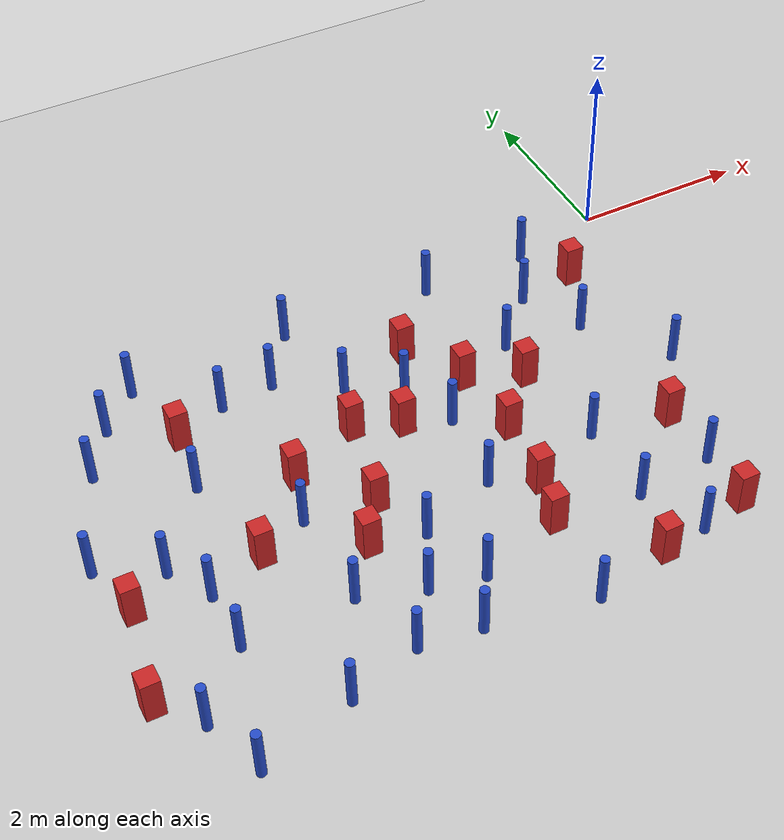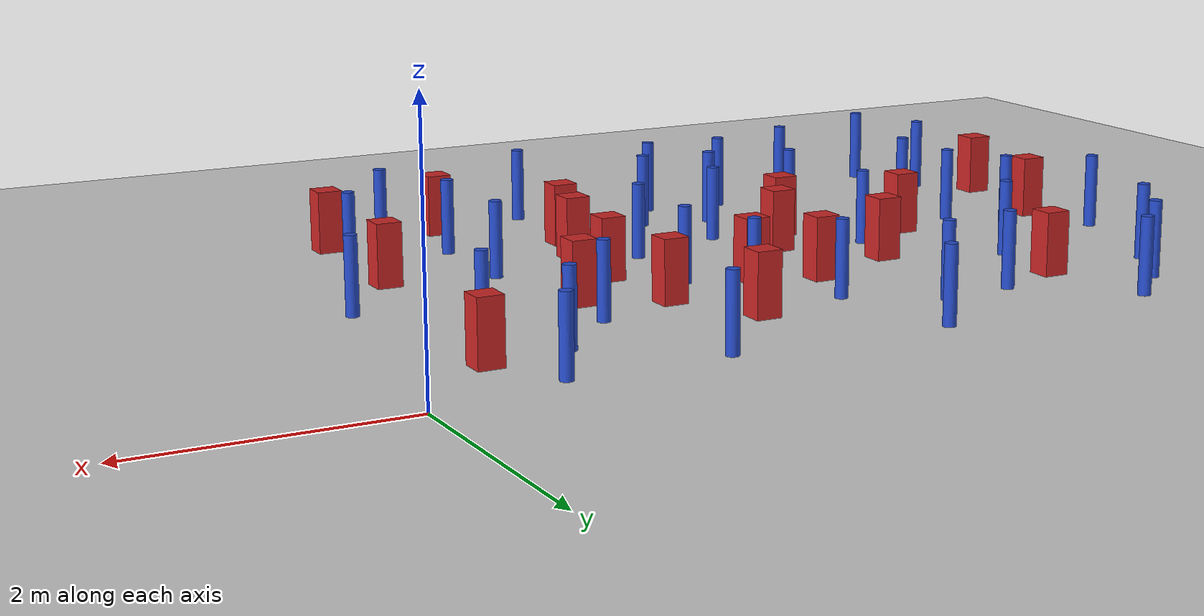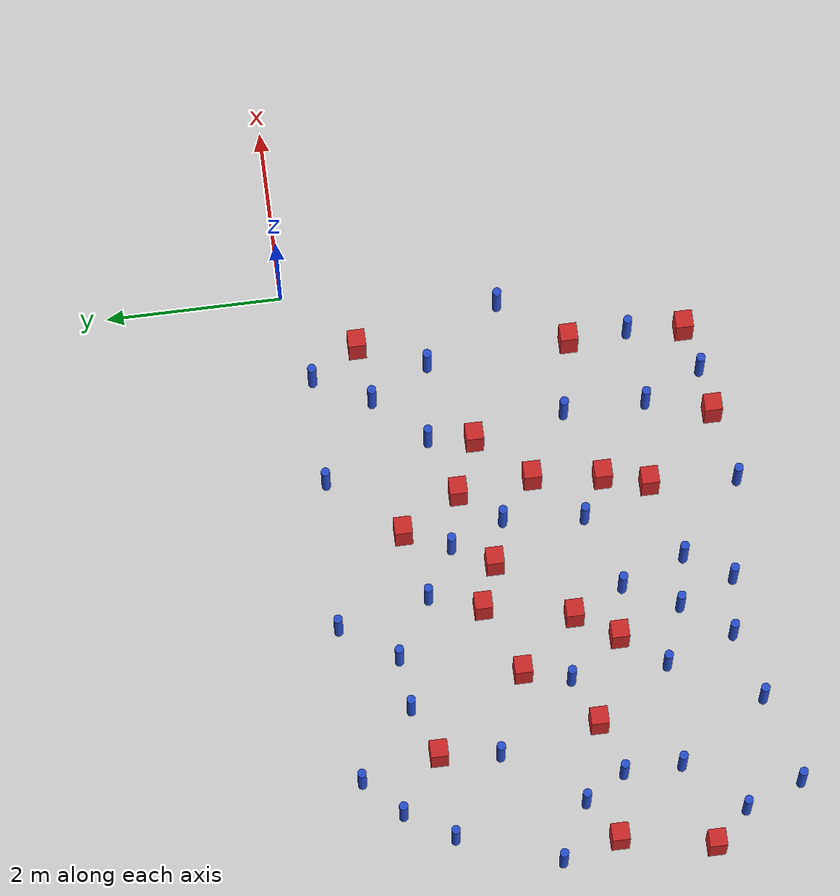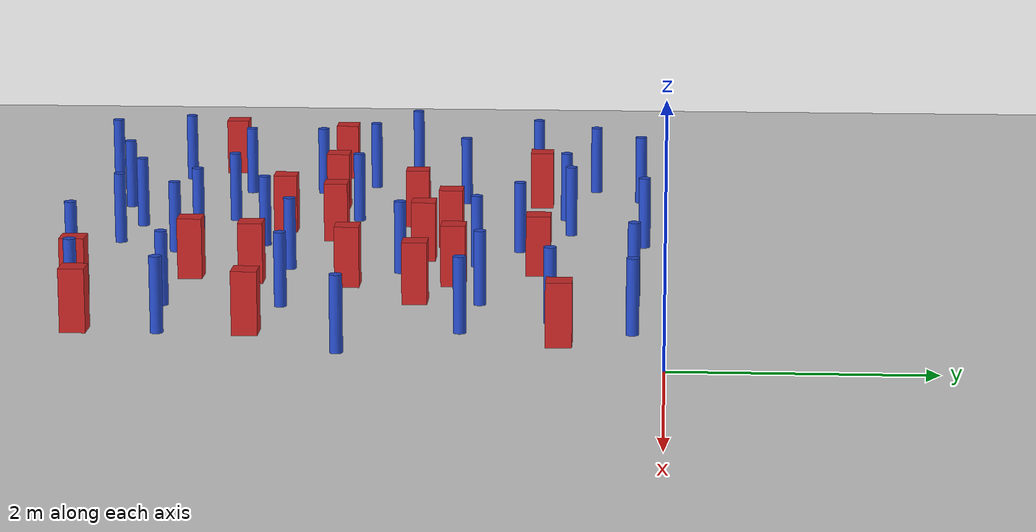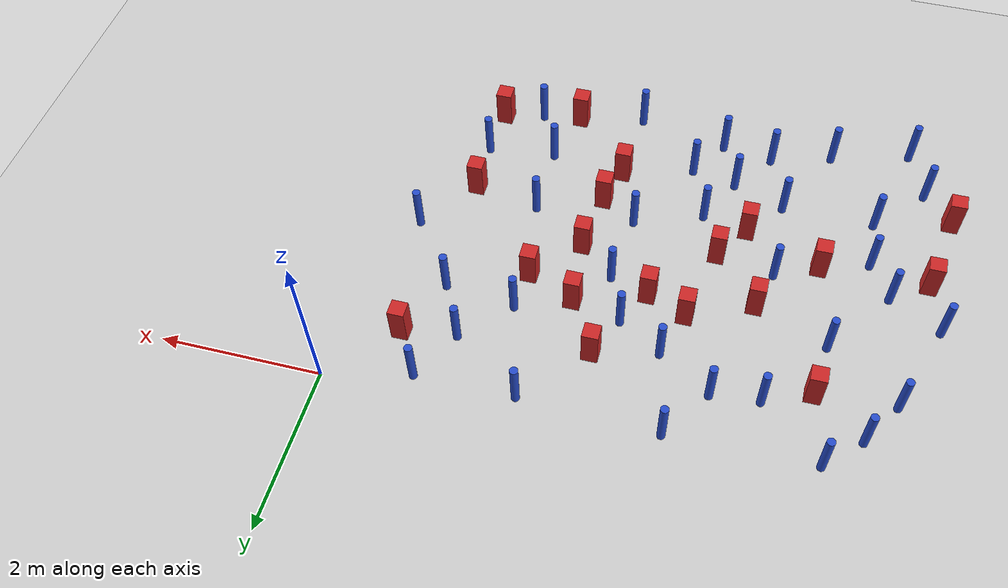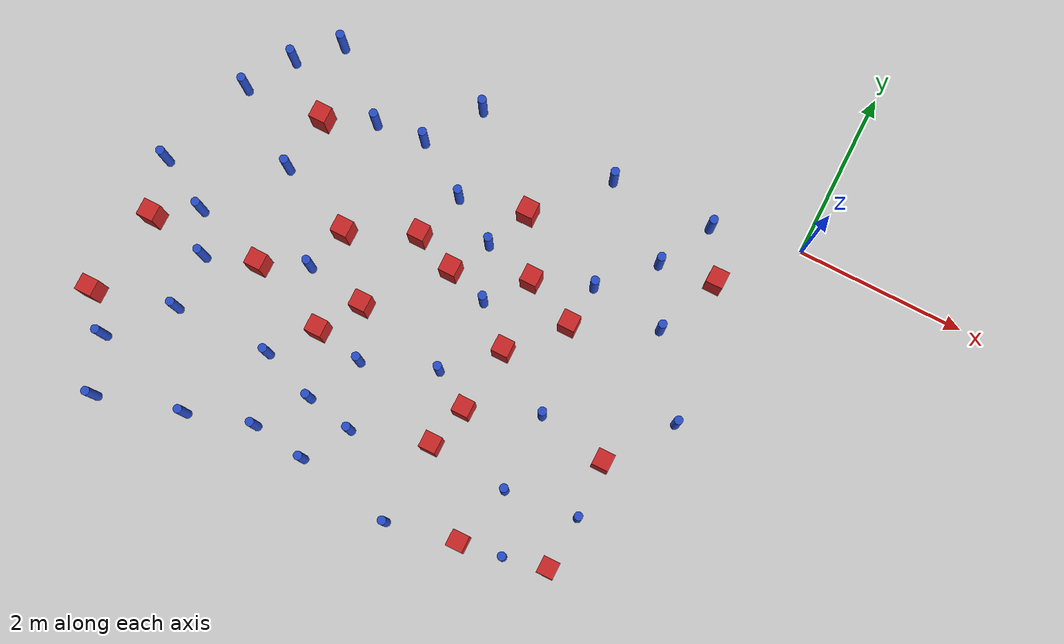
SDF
<sdf version="1.6">
 <world name="default">
  <model name="ground_plane">
   <static>1</static>
   <link name="link">
    <collision name="collision">
     <geometry><plane><normal>0 0 1</normal><size>100 100</size></plane></geometry>
     <surface><friction><ode><mu>100</mu><mu2>50</mu2></ode></friction></surface>
    </collision>
    <visual name="visual">
     <cast_shadows>0</cast_shadows>
     <geometry><plane><normal>0 0 1</normal><size>100 100</size></plane></geometry>
     <material>
      <ambient>1.0 1.0 1.0 1.0</ambient>
      <diffuse>0.8 0.8 0.8 1.0</diffuse>
      <specular>0.01 0.01 0.01 1.000000</specular>
     </material>
    </visual>
   </link>
  </model>
  <model name="pole_obstacle1">
   <static>true</static>
   <pose>-5.38147989765 -4.79862126557 -9.47619616065e-06 5.49618799737e-07 2.36310414037e-07 -1.55090534814e-07</pose>
   <link name="link">
    <pose>0 0 0.3 0 -0 0</pose>
    <inertial>
     <mass>1</mass>
     <inertia><ixx>0.145833</ixx><ixy>0</ixy><ixz>0</ixz><iyy>0.145833</iyy><iyz>0</iyz><izz>0.125</izz></inertia>
    </inertial>
    <collision name="collision">
     <geometry><cylinder><radius>0.05</radius><length>.6</length></cylinder></geometry>
    </collision>
    <visual name="visual">
     <geometry><cylinder><radius>0.05</radius><length>.6</length></cylinder></geometry>
     <material>
      <script><name>Gazebo/Blue</name><uri>file://media/materials/scripts/gazebo.material</uri></script>
     </material>
    </visual>
   </link>
  </model>
  <model name="pole_obstacle4">
   <static>true</static>
   <pose>-6.62016517235 -4.43141822016 -9.47619616065e-06 5.49618799737e-07 2.36310414037e-07 -1.55090534814e-07</pose>
   <link name="link">
    <pose>0 0 0.3 0 -0 0</pose>
    <inertial>
     <mass>1</mass>
     <inertia><ixx>0.145833</ixx><ixy>0</ixy><ixz>0</ixz><iyy>0.145833</iyy><iyz>0</iyz><izz>0.125</izz></inertia>
    </inertial>
    <collision name="collision">
     <geometry><cylinder><radius>0.05</radius><length>.6</length></cylinder></geometry>
    </collision>
    <visual name="visual">
     <geometry><cylinder><radius>0.05</radius><length>.6</length></cylinder></geometry>
     <material>
      <script><name>Gazebo/Blue</name><uri>file://media/materials/scripts/gazebo.material</uri></script>
     </material>
    </visual>
   </link>
  </model>
  <model name="square_post_obstacle10">
   <static>true</static>
   <pose>-6.77359267373 -2.97860575413 -6.11067671241e-07 -5.50515727128e-06 -8.79689657224e-07 2.37013304536e-05</pose>
   <link name="link">
    <pose>0 0 0.25 0 -0 0</pose>
    <inertial>
     <mass>100</mass>
     <inertia>
      <ixx>0.166667</ixx>
      <ixy>0</ixy>
      <ixz>0</ixz>
      <iyy>0.166667</iyy>
      <iyz>0</iyz>
      <izz>0.166667</izz>
     </inertia>
    </inertial>
    <collision name="collision"><geometry><box><size>.2 .2 .5</size></box></geometry></collision>
    <visual name="visual">
     <geometry><box><size>.2 .2 .5</size></box></geometry>
     <material>
      <script><name>Gazebo/Red</name><uri>file://media/materials/scripts/gazebo.material</uri></script>
     </material>
    </visual>
   </link>
  </model>
  <model name="square_post_obstacle14">
   <static>true</static>
   <pose>-2.59733417661 -1.70808143457 -6.11067671241e-07 -5.50515727128e-06 -8.79689657224e-07 2.37013304536e-05</pose>
   <link name="link">
    <pose>0 0 0.25 0 -0 0</pose>
    <inertial>
     <mass>100</mass>
     <inertia>
      <ixx>0.166667</ixx>
      <ixy>0</ixy>
      <ixz>0</ixz>
      <iyy>0.166667</iyy>
      <iyz>0</iyz>
      <izz>0.166667</izz>
     </inertia>
    </inertial>
    <collision name="collision"><geometry><box><size>.2 .2 .5</size></box></geometry></collision>
    <visual name="visual">
     <geometry><box><size>.2 .2 .5</size></box></geometry>
     <material>
      <script><name>Gazebo/Red</name><uri>file://media/materials/scripts/gazebo.material</uri></script>
     </material>
    </visual>
   </link>
  </model>
  <model name="pole_obstacle15">
   <static>true</static>
   <pose>-2.82085442692 -4.86616058618 -9.47619616065e-06 5.49618799738e-07 2.3631041406e-07 -1.55090534801e-07</pose>
   <link name="link">
    <pose>0 0 0.3 0 -0 0</pose>
    <inertial>
     <mass>1</mass>
     <inertia><ixx>0.145833</ixx><ixy>0</ixy><ixz>0</ixz><iyy>0.145833</iyy><iyz>0</iyz><izz>0.125</izz></inertia>
    </inertial>
    <collision name="collision">
     <geometry><cylinder><radius>0.05</radius><length>.6</length></cylinder></geometry>
    </collision>
    <visual name="visual">
     <geometry><cylinder><radius>0.05</radius><length>.6</length></cylinder></geometry>
     <material>
      <script><name>Gazebo/Blue</name><uri>file://media/materials/scripts/gazebo.material</uri></script>
     </material>
    </visual>
   </link>
  </model>
  <model name="pole_obstacle16">
   <static>true</static>
   <pose>-1.92999631986 -1.45536469944 -9.47619616065e-06 5.49618799737e-07 2.36310414065e-07 -1.55090534798e-07</pose>
   <link name="link">
    <pose>0 0 0.3 0 -0 0</pose>
    <inertial>
     <mass>1</mass>
     <inertia><ixx>0.145833</ixx><ixy>0</ixy><ixz>0</ixz><iyy>0.145833</iyy><iyz>0</iyz><izz>0.125</izz></inertia>
    </inertial>
    <collision name="collision">
     <geometry><cylinder><radius>0.05</radius><length>.6</length></cylinder></geometry>
    </collision>
    <visual name="visual">
     <geometry><cylinder><radius>0.05</radius><length>.6</length></cylinder></geometry>
     <material>
      <script><name>Gazebo/Blue</name><uri>file://media/materials/scripts/gazebo.material</uri></script>
     </material>
    </visual>
   </link>
  </model>
  <model name="square_post_obstacle25">
   <static>true</static>
   <pose>-2.75030509881 -3.86803217672 -6.11067671241e-07 -5.50515727128e-06 -8.79689657224e-07 2.37013304536e-05</pose>
   <link name="link">
    <pose>0 0 0.25 0 -0 0</pose>
    <inertial>
     <mass>100</mass>
     <inertia>
      <ixx>0.166667</ixx>
      <ixy>0</ixy>
      <ixz>0</ixz>
      <iyy>0.166667</iyy>
      <iyz>0</iyz>
      <izz>0.166667</izz>
     </inertia>
    </inertial>
    <collision name="collision"><geometry><box><size>.2 .2 .5</size></box></geometry></collision>
    <visual name="visual">
     <geometry><box><size>.2 .2 .5</size></box></geometry>
     <material>
      <script><name>Gazebo/Red</name><uri>file://media/materials/scripts/gazebo.material</uri></script>
     </material>
    </visual>
   </link>
  </model>
  <model name="pole_obstacle19">
   <static>true</static>
   <pose>-3.7670166189 -1.22346130769 -9.47619616065e-06 5.49618799737e-07 2.36310414072e-07 -1.55090534793e-07</pose>
   <link name="link">
    <pose>0 0 0.3 0 -0 0</pose>
    <inertial>
     <mass>1</mass>
     <inertia><ixx>0.145833</ixx><ixy>0</ixy><ixz>0</ixz><iyy>0.145833</iyy><iyz>0</iyz><izz>0.125</izz></inertia>
    </inertial>
    <collision name="collision">
     <geometry><cylinder><radius>0.05</radius><length>.6</length></cylinder></geometry>
    </collision>
    <visual name="visual">
     <geometry><cylinder><radius>0.05</radius><length>.6</length></cylinder></geometry>
     <material>
      <script><name>Gazebo/Blue</name><uri>file://media/materials/scripts/gazebo.material</uri></script>
     </material>
    </visual>
   </link>
  </model>
  <model name="pole_obstacle36">
   <static>true</static>
   <pose>-1.7950702607 -3.95872133973 -9.47619616065e-06 5.49618799737e-07 2.36310414067e-07 -1.55090534795e-07</pose>
   <link name="link">
    <pose>0 0 0.3 0 -0 0</pose>
    <inertial>
     <mass>1</mass>
     <inertia><ixx>0.145833</ixx><ixy>0</ixy><ixz>0</ixz><iyy>0.145833</iyy><iyz>0</iyz><izz>0.125</izz></inertia>
    </inertial>
    <collision name="collision">
     <geometry><cylinder><radius>0.05</radius><length>.6</length></cylinder></geometry>
    </collision>
    <visual name="visual">
     <geometry><cylinder><radius>0.05</radius><length>.6</length></cylinder></geometry>
     <material>
      <script><name>Gazebo/Blue</name><uri>file://media/materials/scripts/gazebo.material</uri></script>
     </material>
    </visual>
   </link>
  </model>
  <model name="square_post_obstacle36">
   <static>true</static>
   <pose>-4.47957196386 -3.29003747523 -6.11067671241e-07 -5.50515727128e-06 -8.79689657224e-07 2.37013304536e-05</pose>
   <link name="link">
    <pose>0 0 0.25 0 -0 0</pose>
    <inertial>
     <mass>100</mass>
     <inertia>
      <ixx>0.166667</ixx>
      <ixy>0</ixy>
      <ixz>0</ixz>
      <iyy>0.166667</iyy>
      <iyz>0</iyz>
      <izz>0.166667</izz>
     </inertia>
    </inertial>
    <collision name="collision"><geometry><box><size>.2 .2 .5</size></box></geometry></collision>
    <visual name="visual">
     <geometry><box><size>.2 .2 .5</size></box></geometry>
     <material>
      <script><name>Gazebo/Red</name><uri>file://media/materials/scripts/gazebo.material</uri></script>
     </material>
    </visual>
   </link>
  </model>
  <model name="pole_obstacle40">
   <static>true</static>
   <pose>-0.933405783144 -3.8646960115 -9.47619616065e-06 5.49618799737e-07 2.36310414066e-07 -1.55090534797e-07</pose>
   <link name="link">
    <pose>0 0 0.3 0 -0 0</pose>
    <inertial>
     <mass>1</mass>
     <inertia><ixx>0.145833</ixx><ixy>0</ixy><ixz>0</ixz><iyy>0.145833</iyy><iyz>0</iyz><izz>0.125</izz></inertia>
    </inertial>
    <collision name="collision">
     <geometry><cylinder><radius>0.05</radius><length>.6</length></cylinder></geometry>
    </collision>
    <visual name="visual">
     <geometry><cylinder><radius>0.05</radius><length>.6</length></cylinder></geometry>
     <material>
      <script><name>Gazebo/Blue</name><uri>file://media/materials/scripts/gazebo.material</uri></script>
     </material>
    </visual>
   </link>
  </model>
  <model name="pole_obstacle42">
   <static>true</static>
   <pose>-3.96498156902 -4.65662633802 -9.47619616065e-06 5.49618799738e-07 2.36310414056e-07 -1.55090534803e-07</pose>
   <link name="link">
    <pose>0 0 0.3 0 -0 0</pose>
    <inertial>
     <mass>1</mass>
     <inertia><ixx>0.145833</ixx><ixy>0</ixy><ixz>0</ixz><iyy>0.145833</iyy><iyz>0</iyz><izz>0.125</izz></inertia>
    </inertial>
    <collision name="collision">
     <geometry><cylinder><radius>0.05</radius><length>.6</length></cylinder></geometry>
    </collision>
    <visual name="visual">
     <geometry><cylinder><radius>0.05</radius><length>.6</length></cylinder></geometry>
     <material>
      <script><name>Gazebo/Blue</name><uri>file://media/materials/scripts/gazebo.material</uri></script>
     </material>
    </visual>
   </link>
  </model>
  <model name="square_post_obstacle42">
   <static>true</static>
   <pose>-2.52046252507 -2.56149725729 -6.11067671241e-07 -5.50515727128e-06 -8.79689657224e-07 2.37013304536e-05</pose>
   <link name="link">
    <pose>0 0 0.25 0 -0 0</pose>
    <inertial>
     <mass>100</mass>
     <inertia>
      <ixx>0.166667</ixx>
      <ixy>0</ixy>
      <ixz>0</ixz>
      <iyy>0.166667</iyy>
      <iyz>0</iyz>
      <izz>0.166667</izz>
     </inertia>
    </inertial>
    <collision name="collision"><geometry><box><size>.2 .2 .5</size></box></geometry></collision>
    <visual name="visual">
     <geometry><box><size>.2 .2 .5</size></box></geometry>
     <material>
      <script><name>Gazebo/Red</name><uri>file://media/materials/scripts/gazebo.material</uri></script>
     </material>
    </visual>
   </link>
  </model>
  <model name="pole_obstacle51">
   <static>true</static>
   <pose>-0.420735187969 -2.43685949517 -9.47619616065e-06 5.49618799738e-07 2.36310414065e-07 -1.55090534798e-07</pose>
   <link name="link">
    <pose>0 0 0.3 0 -0 0</pose>
    <inertial>
     <mass>1</mass>
     <inertia><ixx>0.145833</ixx><ixy>0</ixy><ixz>0</ixz><iyy>0.145833</iyy><iyz>0</iyz><izz>0.125</izz></inertia>
    </inertial>
    <collision name="collision">
     <geometry><cylinder><radius>0.05</radius><length>.6</length></cylinder></geometry>
    </collision>
    <visual name="visual">
     <geometry><cylinder><radius>0.05</radius><length>.6</length></cylinder></geometry>
     <material>
      <script><name>Gazebo/Blue</name><uri>file://media/materials/scripts/gazebo.material</uri></script>
     </material>
    </visual>
   </link>
  </model>
  <model name="pole_obstacle52">
   <static>true</static>
   <pose>-6.38342554504 -5.08029449375 -9.47619616065e-06 5.49618799737e-07 2.36310414037e-07 -1.55090534814e-07</pose>
   <link name="link">
    <pose>0 0 0.3 0 -0 0</pose>
    <inertial>
     <mass>1</mass>
     <inertia><ixx>0.145833</ixx><ixy>0</ixy><ixz>0</ixz><iyy>0.145833</iyy><iyz>0</iyz><izz>0.125</izz></inertia>
    </inertial>
    <collision name="collision">
     <geometry><cylinder><radius>0.05</radius><length>.6</length></cylinder></geometry>
    </collision>
    <visual name="visual">
     <geometry><cylinder><radius>0.05</radius><length>.6</length></cylinder></geometry>
     <material>
      <script><name>Gazebo/Blue</name><uri>file://media/materials/scripts/gazebo.material</uri></script>
     </material>
    </visual>
   </link>
  </model>
  <model name="square_post_obstacle56">
   <static>true</static>
   <pose>-5.43543986545 -2.92793940854 -6.11067671241e-07 -5.50515727128e-06 -8.79689657224e-07 2.37013304536e-05</pose>
   <link name="link">
    <pose>0 0 0.25 0 -0 0</pose>
    <inertial>
     <mass>100</mass>
     <inertia>
      <ixx>0.166667</ixx>
      <ixy>0</ixy>
      <ixz>0</ixz>
      <iyy>0.166667</iyy>
      <iyz>0</iyz>
      <izz>0.166667</izz>
     </inertia>
    </inertial>
    <collision name="collision"><geometry><box><size>.2 .2 .5</size></box></geometry></collision>
    <visual name="visual">
     <geometry><box><size>.2 .2 .5</size></box></geometry>
     <material>
      <script><name>Gazebo/Red</name><uri>file://media/materials/scripts/gazebo.material</uri></script>
     </material>
    </visual>
   </link>
  </model>
  <model name="pole_obstacle60">
   <static>true</static>
   <pose>-5.77909077045 -0.223149524811 -9.47619616065e-06 5.49618799737e-07 2.36310414066e-07 -1.55090534799e-07</pose>
   <link name="link">
    <pose>0 0 0.3 0 -0 0</pose>
    <inertial>
     <mass>1</mass>
     <inertia><ixx>0.145833</ixx><ixy>0</ixy><ixz>0</ixz><iyy>0.145833</iyy><iyz>0</iyz><izz>0.125</izz></inertia>
    </inertial>
    <collision name="collision">
     <geometry><cylinder><radius>0.05</radius><length>.6</length></cylinder></geometry>
    </collision>
    <visual name="visual">
     <geometry><cylinder><radius>0.05</radius><length>.6</length></cylinder></geometry>
     <material>
      <script><name>Gazebo/Blue</name><uri>file://media/materials/scripts/gazebo.material</uri></script>
     </material>
    </visual>
   </link>
  </model>
  <model name="square_post_obstacle62">
   <static>true</static>
   <pose>-4.74841378957 -2.16301596331 -6.11067671241e-07 -5.50515727128e-06 -8.79689657224e-07 2.37013304536e-05</pose>
   <link name="link">
    <pose>0 0 0.25 0 -0 0</pose>
    <inertial>
     <mass>100</mass>
     <inertia>
      <ixx>0.166667</ixx>
      <ixy>0</ixy>
      <ixz>0</ixz>
      <iyy>0.166667</iyy>
      <iyz>0</iyz>
      <izz>0.166667</izz>
     </inertia>
    </inertial>
    <collision name="collision"><geometry><box><size>.2 .2 .5</size></box></geometry></collision>
    <visual name="visual">
     <geometry><box><size>.2 .2 .5</size></box></geometry>
     <material>
      <script><name>Gazebo/Red</name><uri>file://media/materials/scripts/gazebo.material</uri></script>
     </material>
    </visual>
   </link>
  </model>
  <model name="pole_obstacle71">
   <static>true</static>
   <pose>-1.05345892287 -0.242648807991 -9.47619616065e-06 5.49618799737e-07 2.36310414055e-07 -1.55090534804e-07</pose>
   <link name="link">
    <pose>0 0 0.3 0 -0 0</pose>
    <inertial>
     <mass>1</mass>
     <inertia><ixx>0.145833</ixx><ixy>0</ixy><ixz>0</ixz><iyy>0.145833</iyy><iyz>0</iyz><izz>0.125</izz></inertia>
    </inertial>
    <collision name="collision">
     <geometry><cylinder><radius>0.05</radius><length>.6</length></cylinder></geometry>
    </collision>
    <visual name="visual">
     <geometry><cylinder><radius>0.05</radius><length>.6</length></cylinder></geometry>
     <material>
      <script><name>Gazebo/Blue</name><uri>file://media/materials/scripts/gazebo.material</uri></script>
     </material>
    </visual>
   </link>
  </model>
  <model name="pole_obstacle72">
   <static>true</static>
   <pose>-3.99365733127 -0.177394391728 -9.47619616065e-06 5.49618799737e-07 2.36310414067e-07 -1.55090534796e-07</pose>
   <link name="link">
    <pose>0 0 0.3 0 -0 0</pose>
    <inertial>
     <mass>1</mass>
     <inertia><ixx>0.145833</ixx><ixy>0</ixy><ixz>0</ixz><iyy>0.145833</iyy><iyz>0</iyz><izz>0.125</izz></inertia>
    </inertial>
    <collision name="collision">
     <geometry><cylinder><radius>0.05</radius><length>.6</length></cylinder></geometry>
    </collision>
    <visual name="visual">
     <geometry><cylinder><radius>0.05</radius><length>.6</length></cylinder></geometry>
     <material>
      <script><name>Gazebo/Blue</name><uri>file://media/materials/scripts/gazebo.material</uri></script>
     </material>
    </visual>
   </link>
  </model>
  <model name="square_post_obstacle77">
   <static>true</static>
   <pose>-5.58018942457 -1.10738583354 -6.11067671241e-07 -5.50515727128e-06 -8.79689657224e-07 2.37013304536e-05</pose>
   <link name="link">
    <pose>0 0 0.25 0 -0 0</pose>
    <inertial>
     <mass>100</mass>
     <inertia>
      <ixx>0.166667</ixx>
      <ixy>0</ixy>
      <ixz>0</ixz>
      <iyy>0.166667</iyy>
      <iyz>0</iyz>
      <izz>0.166667</izz>
     </inertia>
    </inertial>
    <collision name="collision"><geometry><box><size>.2 .2 .5</size></box></geometry></collision>
    <visual name="visual">
     <geometry><box><size>.2 .2 .5</size></box></geometry>
     <material>
      <script><name>Gazebo/Red</name><uri>file://media/materials/scripts/gazebo.material</uri></script>
     </material>
    </visual>
   </link>
  </model>
  <model name="pole_obstacle83">
   <static>true</static>
   <pose>-4.21180577834 -4.02115858791 -9.47619616065e-06 5.49618799737e-07 2.36310414037e-07 -1.55090534813e-07</pose>
   <link name="link">
    <pose>0 0 0.3 0 -0 0</pose>
    <inertial>
     <mass>1</mass>
     <inertia><ixx>0.145833</ixx><ixy>0</ixy><ixz>0</ixz><iyy>0.145833</iyy><iyz>0</iyz><izz>0.125</izz></inertia>
    </inertial>
    <collision name="collision">
     <geometry><cylinder><radius>0.05</radius><length>.6</length></cylinder></geometry>
    </collision>
    <visual name="visual">
     <geometry><cylinder><radius>0.05</radius><length>.6</length></cylinder></geometry>
     <material>
      <script><name>Gazebo/Blue</name><uri>file://media/materials/scripts/gazebo.material</uri></script>
     </material>
    </visual>
   </link>
  </model>
  <model name="pole_obstacle90">
   <static>true</static>
   <pose>-4.42387696228 -0.811792550683 -9.47619616065e-06 5.49618799737e-07 2.36310414061e-07 -1.550905348e-07</pose>
   <link name="link">
    <pose>0 0 0.3 0 -0 0</pose>
    <inertial>
     <mass>1</mass>
     <inertia><ixx>0.145833</ixx><ixy>0</ixy><ixz>0</ixz><iyy>0.145833</iyy><iyz>0</iyz><izz>0.125</izz></inertia>
    </inertial>
    <collision name="collision">
     <geometry><cylinder><radius>0.05</radius><length>.6</length></cylinder></geometry>
    </collision>
    <visual name="visual">
     <geometry><cylinder><radius>0.05</radius><length>.6</length></cylinder></geometry>
     <material>
      <script><name>Gazebo/Blue</name><uri>file://media/materials/scripts/gazebo.material</uri></script>
     </material>
    </visual>
   </link>
  </model>
  <model name="pole_obstacle93">
   <static>true</static>
   <pose>-6.04440429721 -3.13179476038 -9.47619616065e-06 5.49618799738e-07 2.36310414051e-07 -1.55090534805e-07</pose>
   <link name="link">
    <pose>0 0 0.3 0 -0 0</pose>
    <inertial>
     <mass>1</mass>
     <inertia><ixx>0.145833</ixx><ixy>0</ixy><ixz>0</ixz><iyy>0.145833</iyy><iyz>0</iyz><izz>0.125</izz></inertia>
    </inertial>
    <collision name="collision">
     <geometry><cylinder><radius>0.05</radius><length>.6</length></cylinder></geometry>
    </collision>
    <visual name="visual">
     <geometry><cylinder><radius>0.05</radius><length>.6</length></cylinder></geometry>
     <material>
      <script><name>Gazebo/Blue</name><uri>file://media/materials/scripts/gazebo.material</uri></script>
     </material>
    </visual>
   </link>
  </model>
  <model name="square_post_obstacle83">
   <static>true</static>
   <pose>-6.97667689757 -4.03655276146 -6.11067671241e-07 -5.50515727128e-06 -8.79689657224e-07 2.37013304536e-05</pose>
   <link name="link">
    <pose>0 0 0.25 0 -0 0</pose>
    <inertial>
     <mass>100</mass>
     <inertia>
      <ixx>0.166667</ixx>
      <ixy>0</ixy>
      <ixz>0</ixz>
      <iyy>0.166667</iyy>
      <iyz>0</iyz>
      <izz>0.166667</izz>
     </inertia>
    </inertial>
    <collision name="collision"><geometry><box><size>.2 .2 .5</size></box></geometry></collision>
    <visual name="visual">
     <geometry><box><size>.2 .2 .5</size></box></geometry>
     <material>
      <script><name>Gazebo/Red</name><uri>file://media/materials/scripts/gazebo.material</uri></script>
     </material>
    </visual>
   </link>
  </model>
  <model name="square_post_obstacle85">
   <static>true</static>
   <pose>-0.9790073192 -4.50463093561 -6.11067671241e-07 -5.50515727128e-06 -8.79689657224e-07 2.37013304536e-05</pose>
   <link name="link">
    <pose>0 0 0.25 0 -0 0</pose>
    <inertial>
     <mass>100</mass>
     <inertia>
      <ixx>0.166667</ixx>
      <ixy>0</ixy>
      <ixz>0</ixz>
      <iyy>0.166667</iyy>
      <iyz>0</iyz>
      <izz>0.166667</izz>
     </inertia>
    </inertial>
    <collision name="collision"><geometry><box><size>.2 .2 .5</size></box></geometry></collision>
    <visual name="visual">
     <geometry><box><size>.2 .2 .5</size></box></geometry>
     <material>
      <script><name>Gazebo/Red</name><uri>file://media/materials/scripts/gazebo.material</uri></script>
     </material>
    </visual>
   </link>
  </model>
  <model name="pole_obstacle99">
   <static>true</static>
   <pose>-4.61009252922 -4.56746604757 -9.47619616065e-06 5.49618799737e-07 2.36310414037e-07 -1.55090534814e-07</pose>
   <link name="link">
    <pose>0 0 0.3 0 -0 0</pose>
    <inertial>
     <mass>1</mass>
     <inertia><ixx>0.145833</ixx><ixy>0</ixy><ixz>0</ixz><iyy>0.145833</iyy><iyz>0</iyz><izz>0.125</izz></inertia>
    </inertial>
    <collision name="collision">
     <geometry><cylinder><radius>0.05</radius><length>.6</length></cylinder></geometry>
    </collision>
    <visual name="visual">
     <geometry><cylinder><radius>0.05</radius><length>.6</length></cylinder></geometry>
     <material>
      <script><name>Gazebo/Blue</name><uri>file://media/materials/scripts/gazebo.material</uri></script>
     </material>
    </visual>
   </link>
  </model>
  <model name="square_post_obstacle90">
   <static>true</static>
   <pose>-3.95797059203 -1.8166766609 -6.11067671241e-07 -5.50515727128e-06 -8.79689657224e-07 2.37013304536e-05</pose>
   <link name="link">
    <pose>0 0 0.25 0 -0 0</pose>
    <inertial>
     <mass>100</mass>
     <inertia>
      <ixx>0.166667</ixx>
      <ixy>0</ixy>
      <ixz>0</ixz>
      <iyy>0.166667</iyy>
      <iyz>0</iyz>
      <izz>0.166667</izz>
     </inertia>
    </inertial>
    <collision name="collision"><geometry><box><size>.2 .2 .5</size></box></geometry></collision>
    <visual name="visual">
     <geometry><box><size>.2 .2 .5</size></box></geometry>
     <material>
      <script><name>Gazebo/Red</name><uri>file://media/materials/scripts/gazebo.material</uri></script>
     </material>
    </visual>
   </link>
  </model>
  <model name="pole_obstacle102">
   <static>true</static>
   <pose>-6.54296158205 -1.1743156263 -9.47619616065e-06 5.49618799738e-07 2.36310414071e-07 -1.55090534796e-07</pose>
   <link name="link">
    <pose>0 0 0.3 0 -0 0</pose>
    <inertial>
     <mass>1</mass>
     <inertia><ixx>0.145833</ixx><ixy>0</ixy><ixz>0</ixz><iyy>0.145833</iyy><iyz>0</iyz><izz>0.125</izz></inertia>
    </inertial>
    <collision name="collision">
     <geometry><cylinder><radius>0.05</radius><length>.6</length></cylinder></geometry>
    </collision>
    <visual name="visual">
     <geometry><cylinder><radius>0.05</radius><length>.6</length></cylinder></geometry>
     <material>
      <script><name>Gazebo/Blue</name><uri>file://media/materials/scripts/gazebo.material</uri></script>
     </material>
    </visual>
   </link>
  </model>
  <model name="pole_obstacle108">
   <static>true</static>
   <pose>-1.04449330754 -1.55791371456 -9.47619616065e-06 5.49618799737e-07 2.36310414065e-07 -1.55090534797e-07</pose>
   <link name="link">
    <pose>0 0 0.3 0 -0 0</pose>
    <inertial>
     <mass>1</mass>
     <inertia><ixx>0.145833</ixx><ixy>0</ixy><ixz>0</ixz><iyy>0.145833</iyy><iyz>0</iyz><izz>0.125</izz></inertia>
    </inertial>
    <collision name="collision">
     <geometry><cylinder><radius>0.05</radius><length>.6</length></cylinder></geometry>
    </collision>
    <visual name="visual">
     <geometry><cylinder><radius>0.05</radius><length>.6</length></cylinder></geometry>
     <material>
      <script><name>Gazebo/Blue</name><uri>file://media/materials/scripts/gazebo.material</uri></script>
     </material>
    </visual>
   </link>
  </model>
  <model name="pole_obstacle116">
   <static>true</static>
   <pose>-6.20430360696 -0.634333719115 -9.47619616065e-06 5.49618799737e-07 2.36310414061e-07 -1.550905348e-07</pose>
   <link name="link">
    <pose>0 0 0.3 0 -0 0</pose>
    <inertial>
     <mass>1</mass>
     <inertia><ixx>0.145833</ixx><ixy>0</ixy><ixz>0</ixz><iyy>0.145833</iyy><iyz>0</iyz><izz>0.125</izz></inertia>
    </inertial>
    <collision name="collision">
     <geometry><cylinder><radius>0.05</radius><length>.6</length></cylinder></geometry>
    </collision>
    <visual name="visual">
     <geometry><cylinder><radius>0.05</radius><length>.6</length></cylinder></geometry>
     <material>
      <script><name>Gazebo/Blue</name><uri>file://media/materials/scripts/gazebo.material</uri></script>
     </material>
    </visual>
   </link>
  </model>
  <model name="square_post_obstacle103">
   <static>true</static>
   <pose>-0.963808056189 -3.18480601355 -6.11067671241e-07 -5.50515727128e-06 -8.79689657224e-07 2.37013304536e-05</pose>
   <link name="link">
    <pose>0 0 0.25 0 -0 0</pose>
    <inertial>
     <mass>100</mass>
     <inertia>
      <ixx>0.166667</ixx>
      <ixy>0</ixy>
      <ixz>0</ixz>
      <iyy>0.166667</iyy>
      <iyz>0</iyz>
      <izz>0.166667</izz>
     </inertia>
    </inertial>
    <collision name="collision"><geometry><box><size>.2 .2 .5</size></box></geometry></collision>
    <visual name="visual">
     <geometry><box><size>.2 .2 .5</size></box></geometry>
     <material>
      <script><name>Gazebo/Red</name><uri>file://media/materials/scripts/gazebo.material</uri></script>
     </material>
    </visual>
   </link>
  </model>
  <model name="square_post_obstacle114">
   <static>true</static>
   <pose>-2.61049882367 -3.35383896349 -6.11067671241e-07 -5.50515727128e-06 -8.79689657224e-07 2.37013304536e-05</pose>
   <link name="link">
    <pose>0 0 0.25 0 -0 0</pose>
    <inertial>
     <mass>100</mass>
     <inertia>
      <ixx>0.166667</ixx>
      <ixy>0</ixy>
      <ixz>0</ixz>
      <iyy>0.166667</iyy>
      <iyz>0</iyz>
      <izz>0.166667</izz>
     </inertia>
    </inertial>
    <collision name="collision"><geometry><box><size>.2 .2 .5</size></box></geometry></collision>
    <visual name="visual">
     <geometry><box><size>.2 .2 .5</size></box></geometry>
     <material>
      <script><name>Gazebo/Red</name><uri>file://media/materials/scripts/gazebo.material</uri></script>
     </material>
    </visual>
   </link>
  </model>
  <model name="pole_obstacle132">
   <static>true</static>
   <pose>-1.7980113267 -3.0215480989 -9.47619616065e-06 5.49618799737e-07 2.36310414062e-07 -1.55090534798e-07</pose>
   <link name="link">
    <pose>0 0 0.3 0 -0 0</pose>
    <inertial>
     <mass>1</mass>
     <inertia><ixx>0.145833</ixx><ixy>0</ixy><ixz>0</ixz><iyy>0.145833</iyy><iyz>0</iyz><izz>0.125</izz></inertia>
    </inertial>
    <collision name="collision">
     <geometry><cylinder><radius>0.05</radius><length>.6</length></cylinder></geometry>
    </collision>
    <visual name="visual">
     <geometry><cylinder><radius>0.05</radius><length>.6</length></cylinder></geometry>
     <material>
      <script><name>Gazebo/Blue</name><uri>file://media/materials/scripts/gazebo.material</uri></script>
     </material>
    </visual>
   </link>
  </model>
  <model name="pole_obstacle133">
   <static>true</static>
   <pose>-5.66525151685 -1.79368967814 -9.47619616065e-06 5.49618799738e-07 2.36310414071e-07 -1.55090534796e-07</pose>
   <link name="link">
    <pose>0 0 0.3 0 -0 0</pose>
    <inertial>
     <mass>1</mass>
     <inertia><ixx>0.145833</ixx><ixy>0</ixy><ixz>0</ixz><iyy>0.145833</iyy><iyz>0</iyz><izz>0.125</izz></inertia>
    </inertial>
    <collision name="collision">
     <geometry><cylinder><radius>0.05</radius><length>.6</length></cylinder></geometry>
    </collision>
    <visual name="visual">
     <geometry><cylinder><radius>0.05</radius><length>.6</length></cylinder></geometry>
     <material>
      <script><name>Gazebo/Blue</name><uri>file://media/materials/scripts/gazebo.material</uri></script>
     </material>
    </visual>
   </link>
  </model>
  <model name="square_post_obstacle123">
   <static>true</static>
   <pose>-1.99032457914 -1.97236177347 -6.11067671241e-07 -5.50515727128e-06 -8.79689657224e-07 2.37013304536e-05</pose>
   <link name="link">
    <pose>0 0 0.25 0 -0 0</pose>
    <inertial>
     <mass>100</mass>
     <inertia>
      <ixx>0.166667</ixx>
      <ixy>0</ixy>
      <ixz>0</ixz>
      <iyy>0.166667</iyy>
      <iyz>0</iyz>
      <izz>0.166667</izz>
     </inertia>
    </inertial>
    <collision name="collision"><geometry><box><size>.2 .2 .5</size></box></geometry></collision>
    <visual name="visual">
     <geometry><box><size>.2 .2 .5</size></box></geometry>
     <material>
      <script><name>Gazebo/Red</name><uri>file://media/materials/scripts/gazebo.material</uri></script>
     </material>
    </visual>
   </link>
  </model>
  <model name="square_post_obstacle137">
   <static>true</static>
   <pose>-1.99223894343 -4.69217125334 -6.11067671241e-07 -5.50515727128e-06 -8.79689657224e-07 2.37013304536e-05</pose>
   <link name="link">
    <pose>0 0 0.25 0 -0 0</pose>
    <inertial>
     <mass>100</mass>
     <inertia>
      <ixx>0.166667</ixx>
      <ixy>0</ixy>
      <ixz>0</ixz>
      <iyy>0.166667</iyy>
      <iyz>0</iyz>
      <izz>0.166667</izz>
     </inertia>
    </inertial>
    <collision name="collision"><geometry><box><size>.2 .2 .5</size></box></geometry></collision>
    <visual name="visual">
     <geometry><box><size>.2 .2 .5</size></box></geometry>
     <material>
      <script><name>Gazebo/Red</name><uri>file://media/materials/scripts/gazebo.material</uri></script>
     </material>
    </visual>
   </link>
  </model>
  <model name="square_post_obstacle138">
   <static>true</static>
   <pose>-3.46096689821 -2.01293067301 -6.11067671241e-07 -5.50515727128e-06 -8.79689657224e-07 2.37013304536e-05</pose>
   <link name="link">
    <pose>0 0 0.25 0 -0 0</pose>
    <inertial>
     <mass>100</mass>
     <inertia>
      <ixx>0.166667</ixx>
      <ixy>0</ixy>
      <ixz>0</ixz>
      <iyy>0.166667</iyy>
      <iyz>0</iyz>
      <izz>0.166667</izz>
     </inertia>
    </inertial>
    <collision name="collision"><geometry><box><size>.2 .2 .5</size></box></geometry></collision>
    <visual name="visual">
     <geometry><box><size>.2 .2 .5</size></box></geometry>
     <material>
      <script><name>Gazebo/Red</name><uri>file://media/materials/scripts/gazebo.material</uri></script>
     </material>
    </visual>
   </link>
  </model>
  <model name="square_post_obstacle153">
   <static>true</static>
   <pose>-4.17357239974 -2.82076739963 -6.11067671241e-07 -5.50515727128e-06 -8.79689657224e-07 2.37013304536e-05</pose>
   <link name="link">
    <pose>0 0 0.25 0 -0 0</pose>
    <inertial>
     <mass>100</mass>
     <inertia>
      <ixx>0.166667</ixx>
      <ixy>0</ixy>
      <ixz>0</ixz>
      <iyy>0.166667</iyy>
      <iyz>0</iyz>
      <izz>0.166667</izz>
     </inertia>
    </inertial>
    <collision name="collision"><geometry><box><size>.2 .2 .5</size></box></geometry></collision>
    <visual name="visual">
     <geometry><box><size>.2 .2 .5</size></box></geometry>
     <material>
      <script><name>Gazebo/Red</name><uri>file://media/materials/scripts/gazebo.material</uri></script>
     </material>
    </visual>
   </link>
  </model>
  <model name="pole_obstacle163">
   <static>true</static>
   <pose>-6.31921304603 -2.67020979691 -9.47619616065e-06 5.49618799738e-07 2.36310414051e-07 -1.55090534805e-07</pose>
   <link name="link">
    <pose>0 0 0.3 0 -0 0</pose>
    <inertial>
     <mass>1</mass>
     <inertia><ixx>0.145833</ixx><ixy>0</ixy><ixz>0</ixz><iyy>0.145833</iyy><iyz>0</iyz><izz>0.125</izz></inertia>
    </inertial>
    <collision name="collision">
     <geometry><cylinder><radius>0.05</radius><length>.6</length></cylinder></geometry>
    </collision>
    <visual name="visual">
     <geometry><cylinder><radius>0.05</radius><length>.6</length></cylinder></geometry>
     <material>
      <script><name>Gazebo/Blue</name><uri>file://media/materials/scripts/gazebo.material</uri></script>
     </material>
    </visual>
   </link>
  </model>
  <model name="pole_obstacle170">
   <static>true</static>
   <pose>-2.28178205807 -0.246921836504 -9.4761961606e-06 5.49618799729e-07 2.36310414002e-07 -1.55090534824e-07</pose>
   <link name="link">
    <pose>0 0 0.3 0 -0 0</pose>
    <inertial>
     <mass>1</mass>
     <inertia><ixx>0.145833</ixx><ixy>0</ixy><ixz>0</ixz><iyy>0.145833</iyy><iyz>0</iyz><izz>0.125</izz></inertia>
    </inertial>
    <collision name="collision">
     <geometry><cylinder><radius>0.05</radius><length>.6</length></cylinder></geometry>
    </collision>
    <visual name="visual">
     <geometry><cylinder><radius>0.05</radius><length>.6</length></cylinder></geometry>
     <material>
      <script><name>Gazebo/Blue</name><uri>file://media/materials/scripts/gazebo.material</uri></script>
     </material>
    </visual>
   </link>
  </model>
  <model name="pole_obstacle171">
   <static>true</static>
   <pose>-3.64325343547 -4.13672141562 -9.47619616065e-06 5.49618799738e-07 2.3631041406e-07 -1.55090534801e-07</pose>
   <link name="link">
    <pose>0 0 0.3 0 -0 0</pose>
    <inertial>
     <mass>1</mass>
     <inertia><ixx>0.145833</ixx><ixy>0</ixy><ixz>0</ixz><iyy>0.145833</iyy><iyz>0</iyz><izz>0.125</izz></inertia>
    </inertial>
    <collision name="collision">
     <geometry><cylinder><radius>0.05</radius><length>.6</length></cylinder></geometry>
    </collision>
    <visual name="visual">
     <geometry><cylinder><radius>0.05</radius><length>.6</length></cylinder></geometry>
     <material>
      <script><name>Gazebo/Blue</name><uri>file://media/materials/scripts/gazebo.material</uri></script>
     </material>
    </visual>
   </link>
  </model>
  <model name="pole_obstacle172">
   <static>true</static>
   <pose>-5.01416106289 -0.870688819059 -9.47619616065e-06 5.49618799737e-07 2.36310414061e-07 -1.550905348e-07</pose>
   <link name="link">
    <pose>0 0 0.3 0 -0 0</pose>
    <inertial>
     <mass>1</mass>
     <inertia><ixx>0.145833</ixx><ixy>0</ixy><ixz>0</ixz><iyy>0.145833</iyy><iyz>0</iyz><izz>0.125</izz></inertia>
    </inertial>
    <collision name="collision">
     <geometry><cylinder><radius>0.05</radius><length>.6</length></cylinder></geometry>
    </collision>
    <visual name="visual">
     <geometry><cylinder><radius>0.05</radius><length>.6</length></cylinder></geometry>
     <material>
      <script><name>Gazebo/Blue</name><uri>file://media/materials/scripts/gazebo.material</uri></script>
     </material>
    </visual>
   </link>
  </model>
  <model name="square_post_obstacle164">
   <static>true</static>
   <pose>-2.98161306588 -1.03579387578 -6.11067671241e-07 -5.50515727128e-06 -8.79689657224e-07 2.37013304536e-05</pose>
   <link name="link">
    <pose>0 0 0.25 0 -0 0</pose>
    <inertial>
     <mass>100</mass>
     <inertia>
      <ixx>0.166667</ixx>
      <ixy>0</ixy>
      <ixz>0</ixz>
      <iyy>0.166667</iyy>
      <iyz>0</iyz>
      <izz>0.166667</izz>
     </inertia>
    </inertial>
    <collision name="collision"><geometry><box><size>.2 .2 .5</size></box></geometry></collision>
    <visual name="visual">
     <geometry><box><size>.2 .2 .5</size></box></geometry>
     <material>
      <script><name>Gazebo/Red</name><uri>file://media/materials/scripts/gazebo.material</uri></script>
     </material>
    </visual>
   </link>
  </model>
  <model name="square_post_obstacle165">
   <static>true</static>
   <pose>-0.729586781736 -0.790801661357 -6.11067671241e-07 -5.50515727128e-06 -8.79689657224e-07 2.37013304536e-05</pose>
   <link name="link">
    <pose>0 0 0.25 0 -0 0</pose>
    <inertial>
     <mass>100</mass>
     <inertia>
      <ixx>0.166667</ixx>
      <ixy>0</ixy>
      <ixz>0</ixz>
      <iyy>0.166667</iyy>
      <iyz>0</iyz>
      <izz>0.166667</izz>
     </inertia>
    </inertial>
    <collision name="collision"><geometry><box><size>.2 .2 .5</size></box></geometry></collision>
    <visual name="visual">
     <geometry><box><size>.2 .2 .5</size></box></geometry>
     <material>
      <script><name>Gazebo/Red</name><uri>file://media/materials/scripts/gazebo.material</uri></script>
     </material>
    </visual>
   </link>
  </model>
  <model name="pole_obstacle177">
   <static>true</static>
   <pose>-3.05718096517 -3.09300607043 -9.47619616065e-06 5.49618799737e-07 2.36310414067e-07 -1.55090534797e-07</pose>
   <link name="link">
    <pose>0 0 0.3 0 -0 0</pose>
    <inertial>
     <mass>1</mass>
     <inertia><ixx>0.145833</ixx><ixy>0</ixy><ixz>0</ixz><iyy>0.145833</iyy><iyz>0</iyz><izz>0.125</izz></inertia>
    </inertial>
    <collision name="collision">
     <geometry><cylinder><radius>0.05</radius><length>.6</length></cylinder></geometry>
    </collision>
    <visual name="visual">
     <geometry><cylinder><radius>0.05</radius><length>.6</length></cylinder></geometry>
     <material>
      <script><name>Gazebo/Blue</name><uri>file://media/materials/scripts/gazebo.material</uri></script>
     </material>
    </visual>
   </link>
  </model>
  <model name="pole_obstacle179">
   <static>true</static>
   <pose>-1.38842248011 -0.883069477015 -9.47619616065e-06 5.49618799737e-07 2.36310414065e-07 -1.55090534798e-07</pose>
   <link name="link">
    <pose>0 0 0.3 0 -0 0</pose>
    <inertial>
     <mass>1</mass>
     <inertia><ixx>0.145833</ixx><ixy>0</ixy><ixz>0</ixz><iyy>0.145833</iyy><iyz>0</iyz><izz>0.125</izz></inertia>
    </inertial>
    <collision name="collision">
     <geometry><cylinder><radius>0.05</radius><length>.6</length></cylinder></geometry>
    </collision>
    <visual name="visual">
     <geometry><cylinder><radius>0.05</radius><length>.6</length></cylinder></geometry>
     <material>
      <script><name>Gazebo/Blue</name><uri>file://media/materials/scripts/gazebo.material</uri></script>
     </material>
    </visual>
   </link>
  </model>
  <model name="pole_obstacle181">
   <static>true</static>
   <pose>-6.95484085731 -2.32904102562 -9.47619616065e-06 5.49618799738e-07 2.36310414051e-07 -1.55090534805e-07</pose>
   <link name="link">
    <pose>0 0 0.3 0 -0 0</pose>
    <inertial>
     <mass>1</mass>
     <inertia><ixx>0.145833</ixx><ixy>0</ixy><ixz>0</ixz><iyy>0.145833</iyy><iyz>0</iyz><izz>0.125</izz></inertia>
    </inertial>
    <collision name="collision">
     <geometry><cylinder><radius>0.05</radius><length>.6</length></cylinder></geometry>
    </collision>
    <visual name="visual">
     <geometry><cylinder><radius>0.05</radius><length>.6</length></cylinder></geometry>
     <material>
      <script><name>Gazebo/Blue</name><uri>file://media/materials/scripts/gazebo.material</uri></script>
     </material>
    </visual>
   </link>
  </model>
  <model name="pole_obstacle184">
   <static>true</static>
   <pose>-3.90728466282 -3.40568510959 -9.47619616065e-06 5.49618799737e-07 2.36310414067e-07 -1.55090534797e-07</pose>
   <link name="link">
    <pose>0 0 0.3 0 -0 0</pose>
    <inertial>
     <mass>1</mass>
     <inertia><ixx>0.145833</ixx><ixy>0</ixy><ixz>0</ixz><iyy>0.145833</iyy><iyz>0</iyz><izz>0.125</izz></inertia>
    </inertial>
    <collision name="collision">
     <geometry><cylinder><radius>0.05</radius><length>.6</length></cylinder></geometry>
    </collision>
    <visual name="visual">
     <geometry><cylinder><radius>0.05</radius><length>.6</length></cylinder></geometry>
     <material>
      <script><name>Gazebo/Blue</name><uri>file://media/materials/scripts/gazebo.material</uri></script>
     </material>
    </visual>
   </link>
  </model>
  <model name="pole_obstacle186">
   <static>true</static>
   <pose>-1.48415015379 -4.62380670641 -9.47619616065e-06 5.49618799737e-07 2.36310414061e-07 -1.550905348e-07</pose>
   <link name="link">
    <pose>0 0 0.3 0 -0 0</pose>
    <inertial>
     <mass>1</mass>
     <inertia><ixx>0.145833</ixx><ixy>0</ixy><ixz>0</ixz><iyy>0.145833</iyy><iyz>0</iyz><izz>0.125</izz></inertia>
    </inertial>
    <collision name="collision">
     <geometry><cylinder><radius>0.05</radius><length>.6</length></cylinder></geometry>
    </collision>
    <visual name="visual">
     <geometry><cylinder><radius>0.05</radius><length>.6</length></cylinder></geometry>
     <material>
      <script><name>Gazebo/Blue</name><uri>file://media/materials/scripts/gazebo.material</uri></script>
     </material>
    </visual>
   </link>
  </model>
  <model name="pole_obstacle188">
   <static>true</static>
   <pose>-6.03083598921 -3.78853072712 -9.47619616065e-06 5.49618799738e-07 2.36310414051e-07 -1.55090534805e-07</pose>
   <link name="link">
    <pose>0 0 0.3 0 -0 0</pose>
    <inertial>
     <mass>1</mass>
     <inertia><ixx>0.145833</ixx><ixy>0</ixy><ixz>0</ixz><iyy>0.145833</iyy><iyz>0</iyz><izz>0.125</izz></inertia>
    </inertial>
    <collision name="collision">
     <geometry><cylinder><radius>0.05</radius><length>.6</length></cylinder></geometry>
    </collision>
    <visual name="visual">
     <geometry><cylinder><radius>0.05</radius><length>.6</length></cylinder></geometry>
     <material>
      <script><name>Gazebo/Blue</name><uri>file://media/materials/scripts/gazebo.material</uri></script>
     </material>
    </visual>
   </link>
  </model>
  <model name="pole_obstacle189">
   <static>true</static>
   <pose>-2.9714479688 -2.17143210779 -9.47619616065e-06 5.49618799737e-07 2.36310414051e-07 -1.55090534807e-07</pose>
   <link name="link">
    <pose>0 0 0.3 0 -0 0</pose>
    <inertial>
     <mass>1</mass>
     <inertia><ixx>0.145833</ixx><ixy>0</ixy><ixz>0</ixz><iyy>0.145833</iyy><iyz>0</iyz><izz>0.125</izz></inertia>
    </inertial>
    <collision name="collision">
     <geometry><cylinder><radius>0.05</radius><length>.6</length></cylinder></geometry>
    </collision>
    <visual name="visual">
     <geometry><cylinder><radius>0.05</radius><length>.6</length></cylinder></geometry>
     <material>
      <script><name>Gazebo/Blue</name><uri>file://media/materials/scripts/gazebo.material</uri></script>
     </material>
    </visual>
   </link>
  </model>
  <model name="pole_obstacle207">
   <static>true</static>
   <pose>-4.86802831959 -3.78526239602 -9.47619616065e-06 5.49618799738e-07 2.36310414051e-07 -1.55090534805e-07</pose>
   <link name="link">
    <pose>0 0 0.3 0 -0 0</pose>
    <inertial>
     <mass>1</mass>
     <inertia><ixx>0.145833</ixx><ixy>0</ixy><ixz>0</ixz><iyy>0.145833</iyy><iyz>0</iyz><izz>0.125</izz></inertia>
    </inertial>
    <collision name="collision">
     <geometry><cylinder><radius>0.05</radius><length>.6</length></cylinder></geometry>
    </collision>
    <visual name="visual">
     <geometry><cylinder><radius>0.05</radius><length>.6</length></cylinder></geometry>
     <material>
      <script><name>Gazebo/Blue</name><uri>file://media/materials/scripts/gazebo.material</uri></script>
     </material>
    </visual>
   </link>
  </model>
  <model name="pole_obstacle235">
   <static>true</static>
   <pose>-4.90398168907 -2.69447515078 -9.47619616065e-06 5.49618799738e-07 2.36310414051e-07 -1.55090534805e-07</pose>
   <link name="link">
    <pose>0 0 0.3 0 -0 0</pose>
    <inertial>
     <mass>1</mass>
     <inertia><ixx>0.145833</ixx><ixy>0</ixy><ixz>0</ixz><iyy>0.145833</iyy><iyz>0</iyz><izz>0.125</izz></inertia>
    </inertial>
    <collision name="collision">
     <geometry><cylinder><radius>0.05</radius><length>.6</length></cylinder></geometry>
    </collision>
    <visual name="visual">
     <geometry><cylinder><radius>0.05</radius><length>.6</length></cylinder></geometry>
     <material>
      <script><name>Gazebo/Blue</name><uri>file://media/materials/scripts/gazebo.material</uri></script>
     </material>
    </visual>
   </link>
  </model>
  <model name="pole_obstacle236">
   <static>true</static>
   <pose>-3.21548499181 -1.55540745584 -9.47619616065e-06 5.49618799737e-07 2.36310414072e-07 -1.55090534793e-07</pose>
   <link name="link">
    <pose>0 0 0.3 0 -0 0</pose>
    <inertial>
     <mass>1</mass>
     <inertia><ixx>0.145833</ixx><ixy>0</ixy><ixz>0</ixz><iyy>0.145833</iyy><iyz>0</iyz><izz>0.125</izz></inertia>
    </inertial>
    <collision name="collision">
     <geometry><cylinder><radius>0.05</radius><length>.6</length></cylinder></geometry>
    </collision>
    <visual name="visual">
     <geometry><cylinder><radius>0.05</radius><length>.6</length></cylinder></geometry>
     <material>
      <script><name>Gazebo/Blue</name><uri>file://media/materials/scripts/gazebo.material</uri></script>
     </material>
    </visual>
   </link>
  </model>
 </world>
</sdf>
